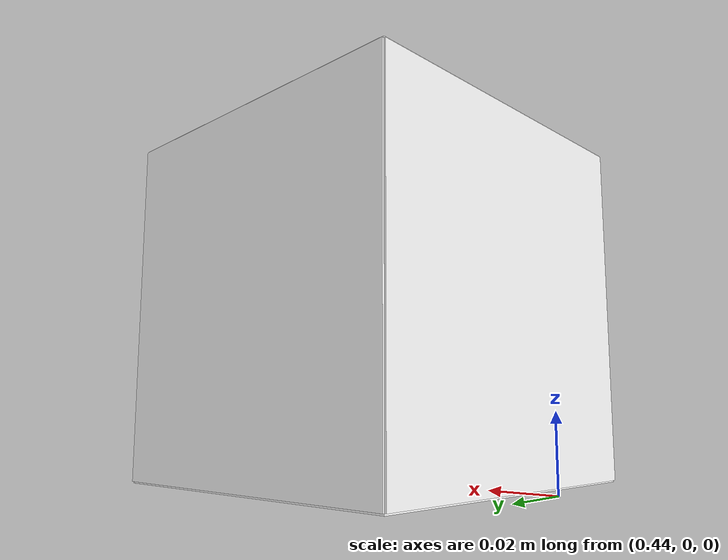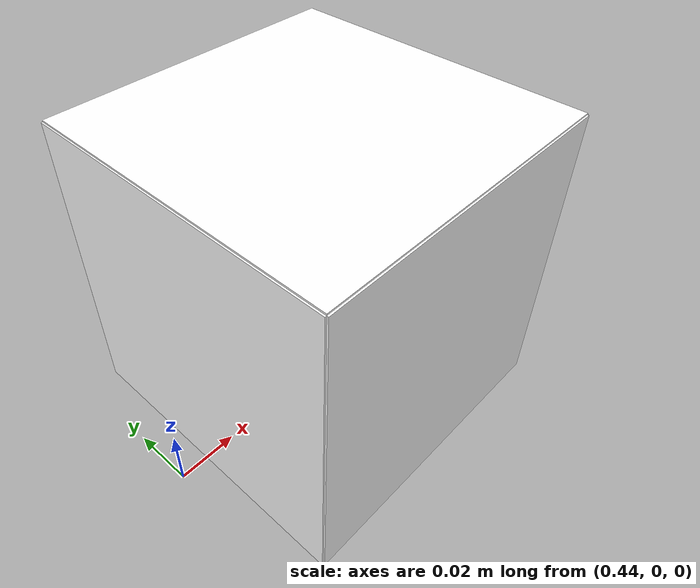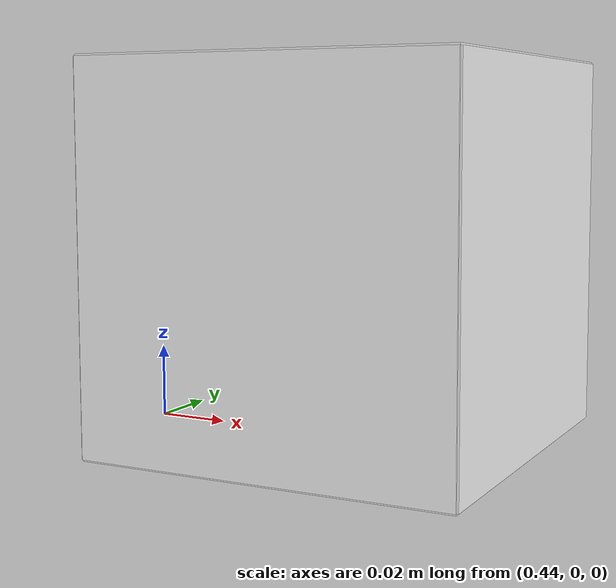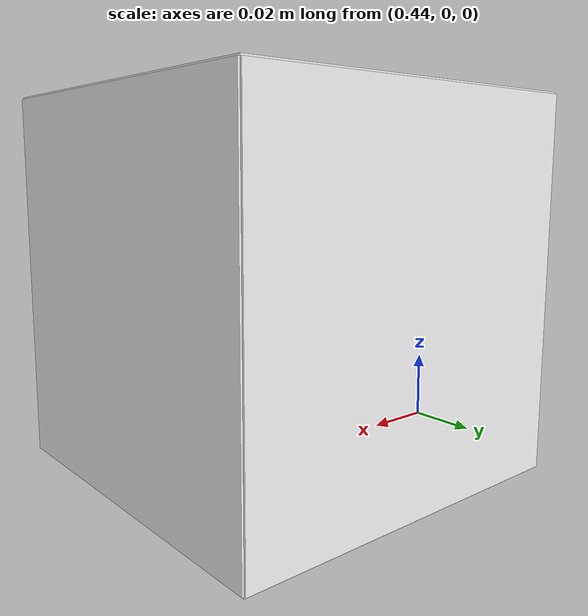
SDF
<?xml version="1.0" ?>
<sdf version="1.6">
  <model name="aruco_cube">
    <pose>0.5 0.0 0.05 0 0 0</pose>
    <link name="link">
      <inertial>
        <mass>0.5</mass>
        <inertia>
          <ixx>0.000833</ixx>
          <ixy>0.0</ixy>
          <ixz>0.0</ixz>
          <iyy>0.000833</iyy>
          <iyz>0.0</iyz>
          <izz>0.000833</izz>
        </inertia>
      </inertial>
      <collision name="collision">
        <geometry>
          <box>
            <size>0.1 0.1 0.1</size>
          </box>
        </geometry>
      </collision>

      <!-- Each face as a separate visual with the ArUco marker texture -->
      <!-- Front face (+X) -->
      <visual name="visual_front">
        <pose>0.05 0 0 0 0 0</pose>
        <geometry>
          <box>
            <size>0.001 0.1 0.1</size>
          </box>
        </geometry>
        <material>
          <ambient>1 1 1 1</ambient>
          <diffuse>1 1 1 1</diffuse>
          <specular>0 0 0 1</specular>
          <pbr>
            <metal>
              <albedo_map>file://arucoMarker.svg</albedo_map>
            </metal>
          </pbr>
        </material>
      </visual>

      <!-- Back face (-X) -->
      <visual name="visual_back">
        <pose>-0.05 0 0 0 0 0</pose>
        <geometry>
          <box>
            <size>0.001 0.1 0.1</size>
          </box>
        </geometry>
        <material>
          <ambient>1 1 1 1</ambient>
          <diffuse>1 1 1 1</diffuse>
          <specular>0 0 0 1</specular>
          <pbr>
            <metal>
              <albedo_map>file://arucoMarker.svg</albedo_map>
            </metal>
          </pbr>
        </material>
      </visual>

      <!-- Right face (+Y) -->
      <visual name="visual_right">
        <pose>0 0.05 0 0 0 0</pose>
        <geometry>
          <box>
            <size>0.1 0.001 0.1</size>
          </box>
        </geometry>
        <material>
          <ambient>1 1 1 1</ambient>
          <diffuse>1 1 1 1</diffuse>
          <specular>0 0 0 1</specular>
          <pbr>
            <metal>
              <albedo_map>file://arucoMarker.svg</albedo_map>
            </metal>
          </pbr>
        </material>
      </visual>

      <!-- Left face (-Y) -->
      <visual name="visual_left">
        <pose>0 -0.05 0 0 0 0</pose>
        <geometry>
          <box>
            <size>0.1 0.001 0.1</size>
          </box>
        </geometry>
        <material>
          <ambient>1 1 1 1</ambient>
          <diffuse>1 1 1 1</diffuse>
          <specular>0 0 0 1</specular>
          <pbr>
            <metal>
              <albedo_map>file://arucoMarker.svg</albedo_map>
            </metal>
          </pbr>
        </material>
      </visual>

      <!-- Top face (+Z) -->
      <visual name="visual_top">
        <pose>0 0 0.05 0 0 0</pose>
        <geometry>
          <box>
            <size>0.1 0.1 0.001</size>
          </box>
        </geometry>
        <material>
          <ambient>1 1 1 1</ambient>
          <diffuse>1 1 1 1</diffuse>
          <specular>0 0 0 1</specular>
          <pbr>
            <metal>
              <albedo_map>file://arucoMarker.svg</albedo_map>
            </metal>
          </pbr>
        </material>
      </visual>

      <!-- Bottom face (-Z) -->
      <visual name="visual_bottom">
        <pose>0 0 -0.05 0 0 0</pose>
        <geometry>
          <box>
            <size>0.1 0.1 0.001</size>
          </box>
        </geometry>
        <material>
          <ambient>1 1 1 1</ambient>
          <diffuse>1 1 1 1</diffuse>
          <specular>0 0 0 1</specular>
          <pbr>
            <metal>
              <albedo_map>file://arucoMarker.svg</albedo_map>
            </metal>
          </pbr>
        </material>
      </visual>

    </link>
  </model>
</sdf>
